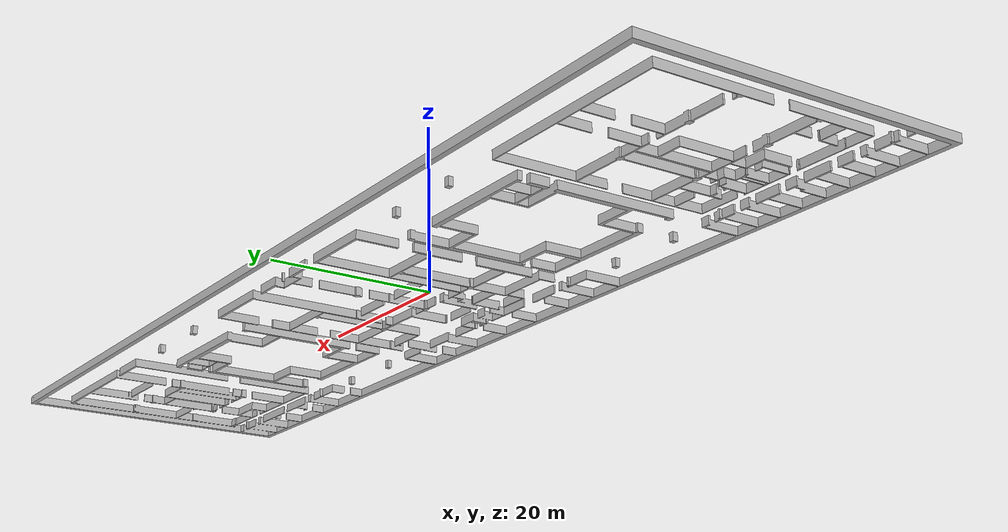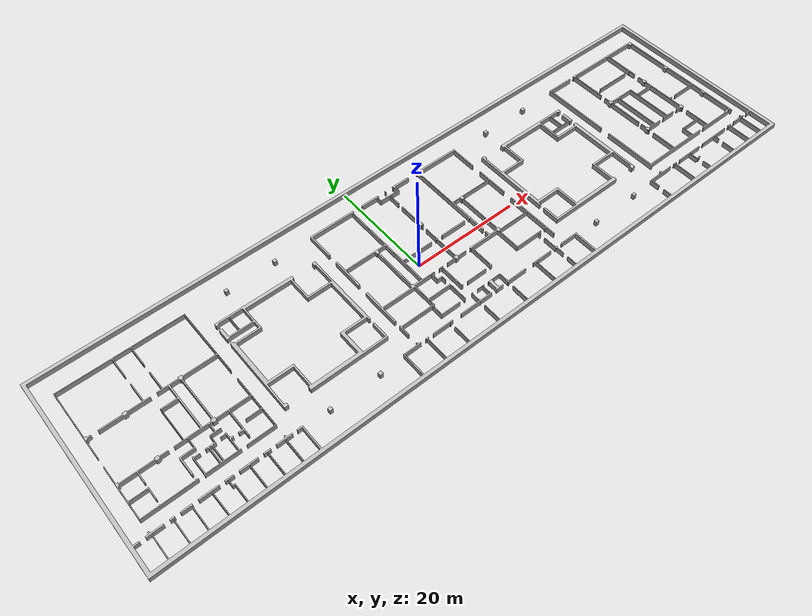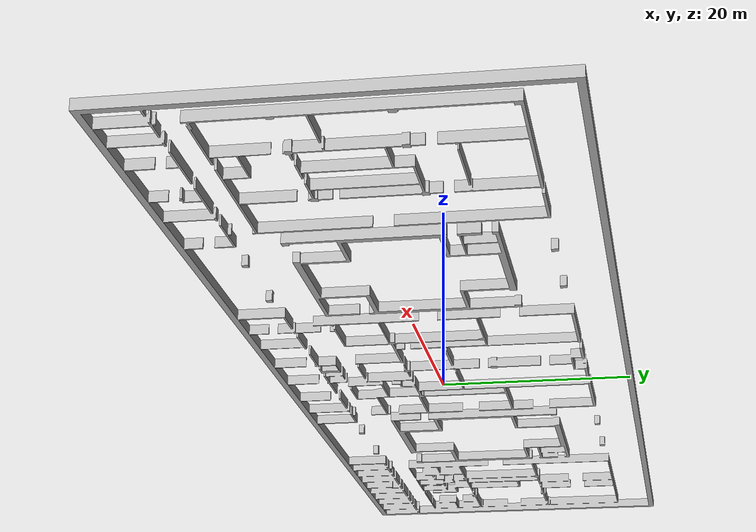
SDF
<?xml version="1.0"?>
<sdf version="1.6">
  <model name="hh2">
    <link name="floor">
      <visual name="visual">
        <geometry>
          <mesh>
            <uri>package://meshes/hh2.stl</uri>
          </mesh>
        </geometry>
      </visual>
      <collision name="collision">
        <geometry>
          <mesh>
            <uri>package://meshes/hh2.stl</uri>
          </mesh>
        </geometry>
      </collision>
      <pose>0 0 0 0 0 0</pose>
      <inertial>
        <mass>1.0</mass>
        <inertia>
          <ixx>1.0</ixx>
          <iyy>1.0</iyy>
          <izz>1.0</izz>
        </inertia>
      </inertial>
      <kinematic>true</kinematic>
    </link>
  </model>
</sdf>
